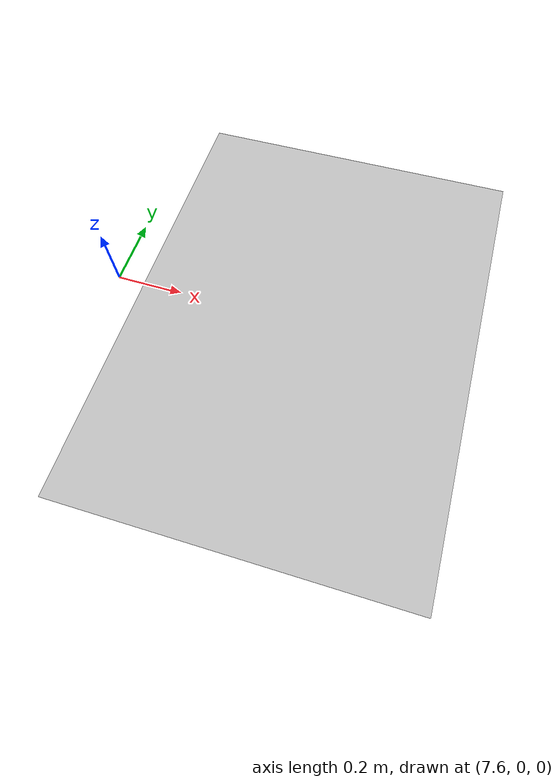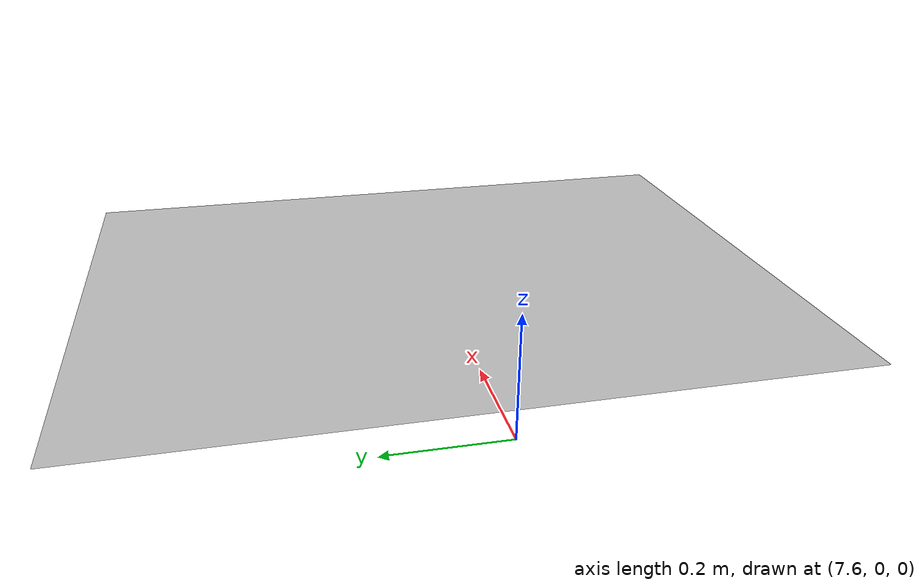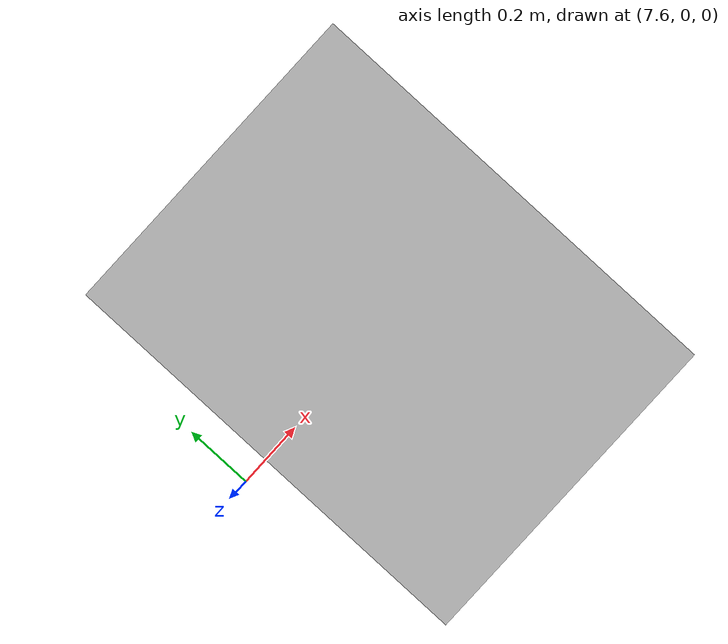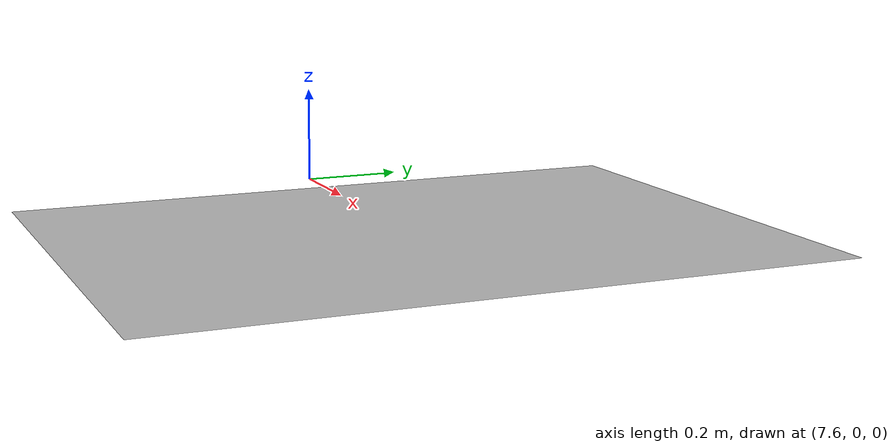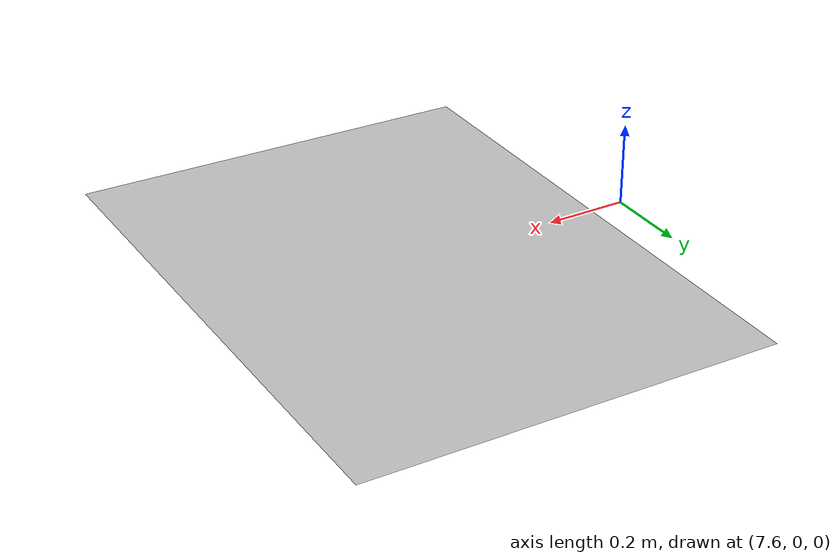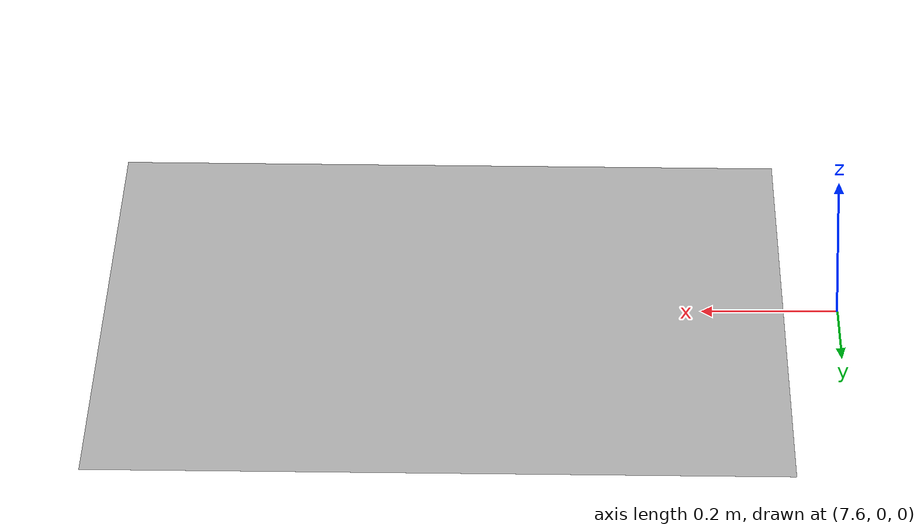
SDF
<?xml version="1.0" ?>
<sdf version="1.6">
  <model name="frame10">
    <static>true</static>
    <pose>9 0 0 1.57 0 0</pose>

    <link name="link_0">
      <visual name="visual">
        <geometry>
          <mesh>
            <uri>meshes/model.obj</uri>
          </mesh>
        </geometry>

      </visual>
      <collision name="collision_0">
        <pose>0 0 0 0 0 0</pose>
        <geometry>
          <mesh>
            <uri>meshes/model.obj</uri>
          </mesh>
        </geometry>
      </collision>
    </link>
  </model>
</sdf>
